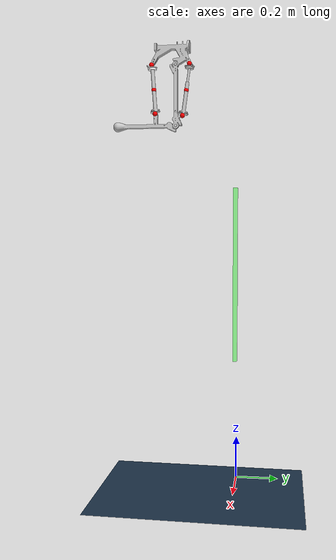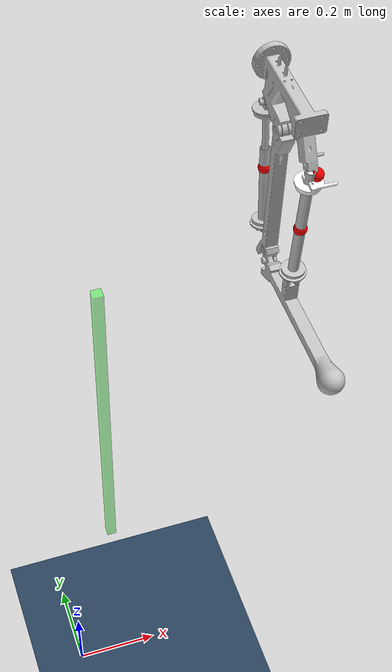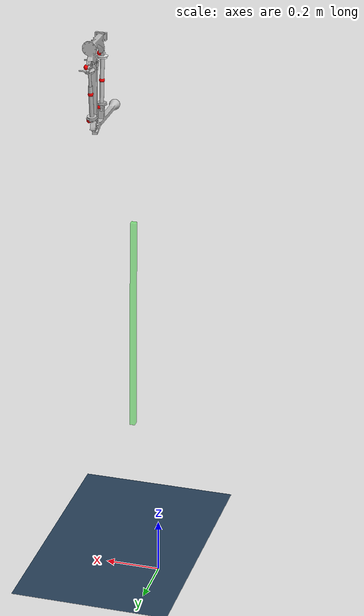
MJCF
<mujoco model="v2_4">
  <compiler angle="radian"/>
  <option timestep="0.001" iterations="1000"/>

  <default>
    <geom density="418"/>
  </default>

  <asset>
    <texture name="grid" type="2d" builtin="checker" rgb1=".1 .2 .3"
      rgb2=".2 .3 .4" width="300" height="300"/>
    <material name="grid" texture="grid" texrepeat="8 8" reflectance=".2"/>

    <mesh name="base_link" file="base_single.STL"/>
    <mesh name="LF_Thigh" file="LF_Thigh.STL"/>
    <mesh name="LF_Calf" file="LF_Calf.STL"/>
    <mesh name="RF_Thigh" file="RF_Thigh.STL"/>
    <mesh name="RF_Calf" file="RF_Calf.STL"/>
    <mesh name="LB_Thigh" file="LB_Thigh.STL"/>
    <mesh name="LB_Calf" file="LB_Calf.STL"/>
    <mesh name="RB_Thigh" file="RB_Thigh.STL"/>
    <mesh name="RB_Calf" file="RB_Calf.STL"/>
    <mesh name="LF_MAA_UPLink" file="LF_MAA_UPLink.STL"/>
    <mesh name="LF_MAA_FM_Link" file="LF_MAA_FM_Link.STL"/>
    <mesh name="LF_MAA_LOLink" file="LF_MAA_LOLink.STL"/>
    <mesh name="RF_MAA_UPLink" file="RF_MAA_UPLink.STL"/>
    <mesh name="RF_MAA_FM_Link" file="RF_MAA_FM_Link.STL"/>
    <mesh name="RF_MAA_LOLink" file="RF_MAA_LOLink.STL"/>
    <mesh name="LB_MAA_UPLink" file="LB_MAA_UPLink.STL"/>
    <mesh name="LB_MAA_FM_Link" file="LB_MAA_FM_Link.STL"/>
    <mesh name="LB_MAA_LOLink" file="LB_MAA_LOLink.STL"/>
    <mesh name="RB_MAA_UPLink" file="RB_MAA_UPLink.STL"/>
    <mesh name="RB_MAA_FM_Link" file="RB_MAA_FM_Link.STL"/>
    <mesh name="RB_MAA_LOLink" file="RB_MAA_LOLink.STL"/>
    <mesh name="LF_BAA_UPLink" file="LF_BAA_UPLink.STL"/>
    <mesh name="LF_BAA_FM_Link" file="LF_BAA_FM_Link.STL"/>
    <mesh name="LF_BAA_LOLink" file="LF_BAA_LOLink.STL"/>
    <mesh name="RF_BAA_UPLink" file="RF_BAA_UPLink.STL"/>
    <mesh name="RF_BAA_FM_Link" file="RF_BAA_FM_Link.STL"/>
    <mesh name="RF_BAA_LOLink" file="RF_BAA_LOLink.STL"/>
    <mesh name="LB_BAA_UPLink" file="LB_BAA_UPLink.STL"/>
    <mesh name="LB_BAA_FM_Link" file="LB_BAA_FM_Link.STL"/>
    <mesh name="LB_BAA_LOLink" file="LB_BAA_LOLink.STL"/>
    <mesh name="RB_BAA_UPLink" file="RB_BAA_UPLink.STL"/>
    <mesh name="RB_BAA_FM_LINK" file="RB_BAA_FM_LINK.STL"/>
    <mesh name="RB_BAA_LOLink" file="RB_BAA_LOLink.STL"/>
  </asset>

  <worldbody>
    <light name="top" pos="0 0 5"/>
    <geom size="10 10 .01" type="plane" material="grid" friction="1 0.005 0.0001"/>

    <!-- horizontal base -->

    <!-- vertical base  -->

    <body name="vertical base" pos="0.1 0 1">
      <geom type="box" size="0.01 0.01 0.4" rgba="0 1 0 0.4" mass="0.001"/>

    <body name="base" pos="0.1 0 1">
      <geom type="mesh" rgba="0.75294 0.75294 0.75294 1" mesh="base_link" mass="0.155" contype="0" conaffinity="0"/>

      <body name="RB_Thigh" pos="0.1245 -0.235 -0.105">
        <joint name="RB_Shoulder" pos="0 0 0" axis="-1 0 0" range="-3.046 3.046" damping="0" stiffness="0" springref="0"/>
        <geom type="mesh" rgba="0.752941 0.752941 0.752941 1" mesh="RB_Thigh" mass="0.086" contype="0" conaffinity="0"/>

        <body name="RB_Calf" pos="0 0 -0.25">
          <joint name="RB_Elbow" pos="0 0 0" axis="-1 0 0" range="-3.57 3.628" damping="0" stiffness="0" springref="0"/>
          <geom type="mesh" rgba="0.752941 0.752941 0.752941 1" mesh="RB_Calf" mass="0.1033" friction="1 0.005 0.0001"/>
        </body>

      </body>

      <body name="RB_MAA_UPLink" pos="0.125 -0.175 -0.105">
        <joint name="RB_MAA_UpJoint" pos="0 0 0" axis="-1 0 0" damping="0.01" stiffness="0" springref="0"/>
        <geom type="mesh" rgba="0.752941 0.752941 0.752941 1" mesh="RB_MAA_UPLink" mass="0.00001" contype="0" conaffinity="0"/>
        <geom type="sphere" size="0.01" rgba="1 0 0 1" mass="0.03" contype="0" conaffinity="0"/>

        <body name="RB_MAA_FM_Link" pos="-0.01 -0.015 -0.105">
          <joint name="RB_MAA_SlideJoint" pos="0 0 0" axis="0 -0.141421 -0.989949" type="slide" damping="22.68" stiffness="637.52" springref="-0.019066"/>
          <geom type="mesh" rgba="1 0 0 1" mesh="RB_MAA_FM_Link" mass="0.00001" contype="0" conaffinity="0"/>
          <geom type="sphere" size="0.01" rgba="1 0 0 1" mass="0.12" contype="0" conaffinity="0"/>

          <body name="RB_MAA_LOLink" pos="0.01 -0.015 -0.105">
            <joint name="RB_MAA_FM_SlideJoint" pos="0 0 0" axis="0 -0.141421 -0.989949" type="slide" damping="22.68" stiffness="637.52" springref="-0.019066"/>
            <geom type="mesh" rgba="0.752941 0.752941 0.752941 1" mesh="RB_MAA_LOLink" mass="0.00001" contype="0" conaffinity="0"/>
            <geom type="sphere" size="0.01" rgba="1 0 0 1" mass="0.03" contype="0" conaffinity="0"/>
          </body>

        </body>

      </body>

      <body name="RB_BAA_UPLink" pos="0.125 -0.335 -0.105">
        <joint name="RB_BAA_UpJoint" pos="0 0 0" axis="-1 0 0" damping="0" stiffness="0" springref="0"/>
        <geom type="mesh" rgba="1 1 1 1" mesh="RB_BAA_UPLink" mass="0.00001" contype="0" conaffinity="0"/>
        <geom type="sphere" size="0.01" rgba="1 0 0 1" mass="0.03" contype="0" conaffinity="0"/>

        <body name="RB_BAA_FM_LINK" pos="-0.01 0.00669873 -0.1">
          <joint name="RB_BAA_SlideJoint" pos="0 0 0" axis="0 0.0668375 -0.997764" type="slide" damping="21.8" stiffness="631.6" springref="0.02578"/>
          <geom type="mesh" rgba="1 0 0 1" mesh="RB_BAA_FM_LINK" mass="0.00001" contype="0" conaffinity="0"/>
          <geom type="sphere" size="0.01" rgba="1 0 0 1" mass="0.12" contype="0" conaffinity="0"/>

          <body name="RB_BAA_LOLink" pos="0.01 0.00669873 -0.1">
            <joint name="RB_BAA_FM_SlideJoint" pos="0 0 0" axis="0 0.0668375 -0.997764" type="slide" damping="21.8" stiffness="631.6" springref="0.02578"/>
            <geom type="mesh" rgba="0.75294 0.75294 0.75294 1" mesh="RB_BAA_LOLink" mass="0.00001" contype="0" conaffinity="0"/>
            <site name="RB_BAA_END" pos="0 0 0" size="0.01" rgba="1 0 0 1"/>
            <geom type="sphere" size="0.01" rgba="1 0 0 1" mass="0.03" contype="0" conaffinity="0"/>
          </body>

        </body>

      </body>

    </body>

      </body>

  </worldbody>

  <!-- 增加在RB_BAA_LowerJoint等关节中加入8个位置控制器，要求增加位置限制 -->
  <actuator>
    <motor joint="RB_MAA_SlideJoint" ctrllimited="true" ctrlrange="-20 20" />
    <motor joint="RB_MAA_FM_SlideJoint" ctrllimited="true" ctrlrange="-20 20" />
    <motor joint="RB_BAA_SlideJoint" ctrllimited="true" ctrlrange="-20 20" />
    <motor joint="RB_BAA_FM_SlideJoint" ctrllimited="true" ctrlrange="-20 20" />
  </actuator>

  <!-- 建立并联关系，如 RB_BAA_LOLink 应该与 RB_Calf 连接 -->
  <equality>
    <connect name="RB_MAA_LOLink" body1="RB_MAA_LOLink" body2="RB_Thigh" anchor="0 0 0" solref="0.001 1" solimp="0.999 0.9995 0.001"/>
    <connect name="RB_BAA_LOLink" body1="RB_BAA_LOLink" body2="RB_Calf" anchor="0 0 0" solref="0.001 1" solimp="0.999 0.9995 0.001"/>

    <!-- FM 的相等约束 -->
    <joint name="RB_MAA_FM" joint1="RB_MAA_SlideJoint" joint2="RB_MAA_FM_SlideJoint" solimp="0.95 0.99 0.00001"/>
    <joint name="RB_BAA_FM" joint1="RB_BAA_SlideJoint" joint2="RB_BAA_FM_SlideJoint" solimp="0.95 0.99 0.00001"/>
  </equality>

  <sensor>
  </sensor>

</mujoco>
